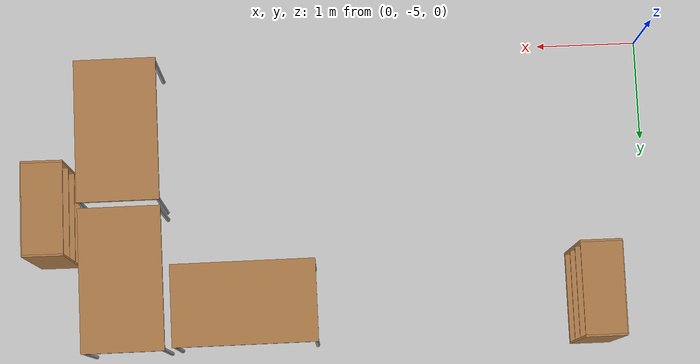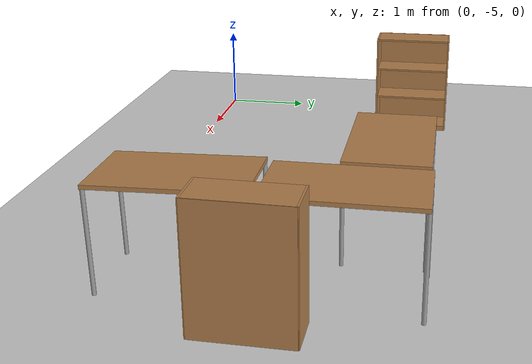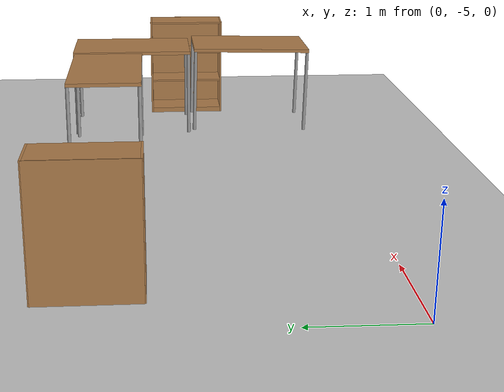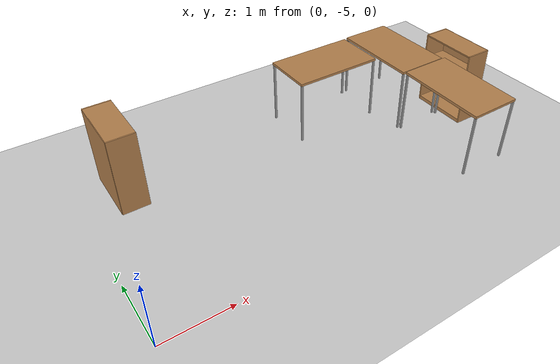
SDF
<sdf version="1.6">
 <world name="default">
  <model name="ground_plane">
   <static>1</static>
   <link name="link">
    <collision name="collision">
     <geometry><plane><normal>0 0 1</normal><size>100 100</size></plane></geometry>
     <surface><friction><ode><mu>100</mu><mu2>50</mu2></ode></friction></surface>
    </collision>
    <visual name="visual">
     <cast_shadows>0</cast_shadows>
     <geometry><plane><normal>0 0 1</normal><size>100 100</size></plane></geometry>
     <material>
      <script><uri>file://media/materials/scripts/gazebo.material</uri><name>Gazebo/Grey</name></script>
     </material>
    </visual>
   </link>
  </model>
  <model name="bookshelf_sidepose_clone_3">
   <link name="link">
    <pose>0.214811 -0.123316 0 0 0 -1.57547</pose>
    <inertial><mass>1</mass></inertial>
    <visual name="visual1">
     <pose>0 0.005 0.6 0 -0 0</pose>
     <geometry><box><size>0.9 0.01 1.2</size></box></geometry>
     <material>
      <script><uri>file://media/materials/scripts/gazebo.material</uri><name>Gazebo/Wood</name></script>
      <ambient>1 1 1 1</ambient>
      <diffuse>1 1 1 1</diffuse>
      <specular>0.2 0.2 0.2 1</specular>
      <emissive>0 0 0 1</emissive>
     </material>
    </visual>
    <visual name="visual2">
     <pose>0.45 -0.195 0.6 0 -0 0</pose>
     <geometry><box><size>0.02 0.4 1.2</size></box></geometry>
     <material>
      <script><uri>file://media/materials/scripts/gazebo.material</uri><name>Gazebo/Wood</name></script>
      <ambient>1 1 1 1</ambient>
      <diffuse>1 1 1 1</diffuse>
      <specular>0.2 0.2 0.2 1</specular>
      <emissive>0 0 0 1</emissive>
     </material>
    </visual>
    <visual name="visual3">
     <pose>-0.45 -0.195 0.6 0 -0 0</pose>
     <geometry><box><size>0.02 0.4 1.2</size></box></geometry>
     <material>
      <script><uri>file://media/materials/scripts/gazebo.material</uri><name>Gazebo/Wood</name></script>
      <ambient>1 1 1 1</ambient>
      <diffuse>1 1 1 1</diffuse>
      <specular>0.2 0.2 0.2 1</specular>
      <emissive>0 0 0 1</emissive>
     </material>
    </visual>
    <visual name="visual4">
     <pose>0 -0.195 0.03 0 -0 0</pose>
     <geometry><box><size>0.88 0.4 0.06</size></box></geometry>
     <material>
      <script><uri>file://media/materials/scripts/gazebo.material</uri><name>Gazebo/Wood</name></script>
      <ambient>1 1 1 1</ambient>
      <diffuse>1 1 1 1</diffuse>
      <specular>0.2 0.2 0.2 1</specular>
      <emissive>0 0 0 1</emissive>
     </material>
    </visual>
    <visual name="visual6">
     <pose>0 -0.195 0.43 0 -0 0</pose>
     <geometry><box><size>0.88 0.4 0.02</size></box></geometry>
     <material>
      <script><uri>file://media/materials/scripts/gazebo.material</uri><name>Gazebo/Wood</name></script>
      <ambient>1 1 1 1</ambient>
      <diffuse>1 1 1 1</diffuse>
      <specular>0.2 0.2 0.2 1</specular>
      <emissive>0 0 0 1</emissive>
     </material>
    </visual>
    <visual name="visual5">
     <pose>0 -0.195 1.19 0 -0 0</pose>
     <geometry><box><size>0.88 0.4 0.02</size></box></geometry>
     <material>
      <script><uri>file://media/materials/scripts/gazebo.material</uri><name>Gazebo/Wood</name></script>
      <ambient>1 1 1 1</ambient>
      <diffuse>1 1 1 1</diffuse>
      <specular>0.2 0.2 0.2 1</specular>
      <emissive>0 0 0 1</emissive>
     </material>
    </visual>
    <visual name="visual7">
     <pose>0 -0.195 0.8 0 -0 0</pose>
     <geometry><box><size>0.88 0.4 0.02</size></box></geometry>
     <material>
      <script><uri>file://media/materials/scripts/gazebo.material</uri><name>Gazebo/Wood</name></script>
      <ambient>1 1 1 1</ambient>
      <diffuse>1 1 1 1</diffuse>
      <specular>0.2 0.2 0.2 1</specular>
      <emissive>0 0 0 1</emissive>
     </material>
    </visual>
    <collision name="back">
     <pose>0 0.005 0.6 0 -0 0</pose>
     <geometry><box><size>0.9 0.01 1.2</size></box></geometry>
     <surface>
      <friction>
       <ode><mu>1</mu><mu2>1</mu2><fdir1>0 0 0</fdir1><slip1>0</slip1><slip2>0</slip2></ode>
       <torsional>
        <coefficient>1</coefficient>
        <patch_radius>0</patch_radius>
        <surface_radius>0</surface_radius>
        <use_patch_radius>1</use_patch_radius>
        <ode><slip>0</slip></ode>
       </torsional>
      </friction>
      <bounce><restitution_coefficient>0</restitution_coefficient><threshold>1e+06</threshold></bounce>
      <contact>
       <collide_without_contact>0</collide_without_contact>
       <collide_without_contact_bitmask>1</collide_without_contact_bitmask>
       <collide_bitmask>1</collide_bitmask>
       <ode>
        <soft_cfm>0</soft_cfm>
        <soft_erp>0.2</soft_erp>
        <kp>1e+13</kp>
        <kd>1</kd>
        <max_vel>0.01</max_vel>
        <min_depth>0</min_depth>
       </ode>
       <bullet>
        <split_impulse>1</split_impulse>
        <split_impulse_penetration_threshold>-0.01</split_impulse_penetration_threshold>
        <soft_cfm>0</soft_cfm>
        <soft_erp>0.2</soft_erp>
        <kp>1e+13</kp>
        <kd>1</kd>
       </bullet>
      </contact>
     </surface>
    </collision>
    <collision name="left_side">
     <pose>0.45 -0.195 0.6 0 -0 0</pose>
     <geometry><box><size>0.02 0.4 1.2</size></box></geometry>
     <surface>
      <friction>
       <ode><mu>1</mu><mu2>1</mu2><fdir1>0 0 0</fdir1><slip1>0</slip1><slip2>0</slip2></ode>
       <torsional>
        <coefficient>1</coefficient>
        <patch_radius>0</patch_radius>
        <surface_radius>0</surface_radius>
        <use_patch_radius>1</use_patch_radius>
        <ode><slip>0</slip></ode>
       </torsional>
      </friction>
      <bounce><restitution_coefficient>0</restitution_coefficient><threshold>1e+06</threshold></bounce>
      <contact>
       <collide_without_contact>0</collide_without_contact>
       <collide_without_contact_bitmask>1</collide_without_contact_bitmask>
       <collide_bitmask>1</collide_bitmask>
       <ode>
        <soft_cfm>0</soft_cfm>
        <soft_erp>0.2</soft_erp>
        <kp>1e+13</kp>
        <kd>1</kd>
        <max_vel>0.01</max_vel>
        <min_depth>0</min_depth>
       </ode>
       <bullet>
        <split_impulse>1</split_impulse>
        <split_impulse_penetration_threshold>-0.01</split_impulse_penetration_threshold>
        <soft_cfm>0</soft_cfm>
        <soft_erp>0.2</soft_erp>
        <kp>1e+13</kp>
        <kd>1</kd>
       </bullet>
      </contact>
     </surface>
    </collision>
    <collision name="right_side">
     <pose>-0.45 -0.195 0.6 0 -0 0</pose>
     <geometry><box><size>0.02 0.4 1.2</size></box></geometry>
     <surface>
      <friction>
       <ode><mu>1</mu><mu2>1</mu2><fdir1>0 0 0</fdir1><slip1>0</slip1><slip2>0</slip2></ode>
       <torsional>
        <coefficient>1</coefficient>
        <patch_radius>0</patch_radius>
        <surface_radius>0</surface_radius>
        <use_patch_radius>1</use_patch_radius>
        <ode><slip>0</slip></ode>
       </torsional>
      </friction>
      <bounce><restitution_coefficient>0</restitution_coefficient><threshold>1e+06</threshold></bounce>
      <contact>
       <collide_without_contact>0</collide_without_contact>
       <collide_without_contact_bitmask>1</collide_without_contact_bitmask>
       <collide_bitmask>1</collide_bitmask>
       <ode>
        <soft_cfm>0</soft_cfm>
        <soft_erp>0.2</soft_erp>
        <kp>1e+13</kp>
        <kd>1</kd>
        <max_vel>0.01</max_vel>
        <min_depth>0</min_depth>
       </ode>
       <bullet>
        <split_impulse>1</split_impulse>
        <split_impulse_penetration_threshold>-0.01</split_impulse_penetration_threshold>
        <soft_cfm>0</soft_cfm>
        <soft_erp>0.2</soft_erp>
        <kp>1e+13</kp>
        <kd>1</kd>
       </bullet>
      </contact>
     </surface>
    </collision>
    <collision name="bottom">
     <pose>0 -0.195 0.03 0 -0 0</pose>
     <geometry><box><size>0.88 0.4 0.06</size></box></geometry>
     <surface>
      <friction>
       <ode><mu>1</mu><mu2>1</mu2><fdir1>0 0 0</fdir1><slip1>0</slip1><slip2>0</slip2></ode>
       <torsional>
        <coefficient>1</coefficient>
        <patch_radius>0</patch_radius>
        <surface_radius>0</surface_radius>
        <use_patch_radius>1</use_patch_radius>
        <ode><slip>0</slip></ode>
       </torsional>
      </friction>
      <bounce><restitution_coefficient>0</restitution_coefficient><threshold>1e+06</threshold></bounce>
      <contact>
       <collide_without_contact>0</collide_without_contact>
       <collide_without_contact_bitmask>1</collide_without_contact_bitmask>
       <collide_bitmask>1</collide_bitmask>
       <ode>
        <soft_cfm>0</soft_cfm>
        <soft_erp>0.2</soft_erp>
        <kp>1e+13</kp>
        <kd>1</kd>
        <max_vel>0.01</max_vel>
        <min_depth>0</min_depth>
       </ode>
       <bullet>
        <split_impulse>1</split_impulse>
        <split_impulse_penetration_threshold>-0.01</split_impulse_penetration_threshold>
        <soft_cfm>0</soft_cfm>
        <soft_erp>0.2</soft_erp>
        <kp>1e+13</kp>
        <kd>1</kd>
       </bullet>
      </contact>
     </surface>
    </collision>
    <collision name="low_shelf">
     <pose>0 -0.195 0.43 0 -0 0</pose>
     <geometry><box><size>0.88 0.4 0.02</size></box></geometry>
     <surface>
      <friction>
       <ode><mu>1</mu><mu2>1</mu2><fdir1>0 0 0</fdir1><slip1>0</slip1><slip2>0</slip2></ode>
       <torsional>
        <coefficient>1</coefficient>
        <patch_radius>0</patch_radius>
        <surface_radius>0</surface_radius>
        <use_patch_radius>1</use_patch_radius>
        <ode><slip>0</slip></ode>
       </torsional>
      </friction>
      <bounce><restitution_coefficient>0</restitution_coefficient><threshold>1e+06</threshold></bounce>
      <contact>
       <collide_without_contact>0</collide_without_contact>
       <collide_without_contact_bitmask>1</collide_without_contact_bitmask>
       <collide_bitmask>1</collide_bitmask>
       <ode>
        <soft_cfm>0</soft_cfm>
        <soft_erp>0.2</soft_erp>
        <kp>1e+13</kp>
        <kd>1</kd>
        <max_vel>0.01</max_vel>
        <min_depth>0</min_depth>
       </ode>
       <bullet>
        <split_impulse>1</split_impulse>
        <split_impulse_penetration_threshold>-0.01</split_impulse_penetration_threshold>
        <soft_cfm>0</soft_cfm>
        <soft_erp>0.2</soft_erp>
        <kp>1e+13</kp>
        <kd>1</kd>
       </bullet>
      </contact>
     </surface>
    </collision>
    <collision name="top">
     <pose>0 -0.195 1.19 0 -0 0</pose>
     <geometry><box><size>0.88 0.4 0.02</size></box></geometry>
     <surface>
      <friction>
       <ode><mu>1</mu><mu2>1</mu2><fdir1>0 0 0</fdir1><slip1>0</slip1><slip2>0</slip2></ode>
       <torsional>
        <coefficient>1</coefficient>
        <patch_radius>0</patch_radius>
        <surface_radius>0</surface_radius>
        <use_patch_radius>1</use_patch_radius>
        <ode><slip>0</slip></ode>
       </torsional>
      </friction>
      <bounce><restitution_coefficient>0</restitution_coefficient><threshold>1e+06</threshold></bounce>
      <contact>
       <collide_without_contact>0</collide_without_contact>
       <collide_without_contact_bitmask>1</collide_without_contact_bitmask>
       <collide_bitmask>1</collide_bitmask>
       <ode>
        <soft_cfm>0</soft_cfm>
        <soft_erp>0.2</soft_erp>
        <kp>1e+13</kp>
        <kd>1</kd>
        <max_vel>0.01</max_vel>
        <min_depth>0</min_depth>
       </ode>
       <bullet>
        <split_impulse>1</split_impulse>
        <split_impulse_penetration_threshold>-0.01</split_impulse_penetration_threshold>
        <soft_cfm>0</soft_cfm>
        <soft_erp>0.2</soft_erp>
        <kp>1e+13</kp>
        <kd>1</kd>
       </bullet>
      </contact>
     </surface>
    </collision>
    <collision name="high_shelf">
     <pose>0 -0.195 0.8 0 -0 0</pose>
     <geometry><box><size>0.88 0.4 0.02</size></box></geometry>
     <surface>
      <friction>
       <ode><mu>1</mu><mu2>1</mu2><fdir1>0 0 0</fdir1><slip1>0</slip1><slip2>0</slip2></ode>
       <torsional>
        <coefficient>1</coefficient>
        <patch_radius>0</patch_radius>
        <surface_radius>0</surface_radius>
        <use_patch_radius>1</use_patch_radius>
        <ode><slip>0</slip></ode>
       </torsional>
      </friction>
      <bounce><restitution_coefficient>0</restitution_coefficient><threshold>1e+06</threshold></bounce>
      <contact>
       <collide_without_contact>0</collide_without_contact>
       <collide_without_contact_bitmask>1</collide_without_contact_bitmask>
       <collide_bitmask>1</collide_bitmask>
       <ode>
        <soft_cfm>0</soft_cfm>
        <soft_erp>0.2</soft_erp>
        <kp>1e+13</kp>
        <kd>1</kd>
        <max_vel>0.01</max_vel>
        <min_depth>0</min_depth>
       </ode>
       <bullet>
        <split_impulse>1</split_impulse>
        <split_impulse_penetration_threshold>-0.01</split_impulse_penetration_threshold>
        <soft_cfm>0</soft_cfm>
        <soft_erp>0.2</soft_erp>
        <kp>1e+13</kp>
        <kd>1</kd>
       </bullet>
      </contact>
     </surface>
    </collision>
   </link>
   <static>1</static>
   <pose>5.91709 -3.24234 0 0 -0 0</pose>
  </model>
  <model name="bookshelf_side2_clone_4">
   <link name="link">
    <pose>0 0 0 0 -0 1.57268</pose>
    <inertial><mass>1</mass></inertial>
    <visual name="visual1">
     <pose>0 0.005 0.6 0 -0 0</pose>
     <geometry><box><size>0.9 0.01 1.2</size></box></geometry>
     <material>
      <script><uri>file://media/materials/scripts/gazebo.material</uri><name>Gazebo/Wood</name></script>
      <ambient>1 1 1 1</ambient>
      <diffuse>1 1 1 1</diffuse>
      <specular>0.2 0.2 0.2 1</specular>
      <emissive>0 0 0 1</emissive>
     </material>
    </visual>
    <visual name="visual2">
     <pose>0.45 -0.195 0.6 0 -0 0</pose>
     <geometry><box><size>0.02 0.4 1.2</size></box></geometry>
     <material>
      <script><uri>file://media/materials/scripts/gazebo.material</uri><name>Gazebo/Wood</name></script>
      <ambient>1 1 1 1</ambient>
      <diffuse>1 1 1 1</diffuse>
      <specular>0.2 0.2 0.2 1</specular>
      <emissive>0 0 0 1</emissive>
     </material>
    </visual>
    <visual name="visual4">
     <pose>0 -0.195 0.03 0 -0 0</pose>
     <geometry><box><size>0.88 0.4 0.06</size></box></geometry>
     <material>
      <script><uri>file://media/materials/scripts/gazebo.material</uri><name>Gazebo/Wood</name></script>
      <ambient>1 1 1 1</ambient>
      <diffuse>1 1 1 1</diffuse>
      <specular>0.2 0.2 0.2 1</specular>
      <emissive>0 0 0 1</emissive>
     </material>
    </visual>
    <visual name="visual3">
     <pose>-0.45 -0.195 0.6 0 -0 0</pose>
     <geometry><box><size>0.02 0.4 1.2</size></box></geometry>
     <material>
      <script><uri>file://media/materials/scripts/gazebo.material</uri><name>Gazebo/Wood</name></script>
      <ambient>1 1 1 1</ambient>
      <diffuse>1 1 1 1</diffuse>
      <specular>0.2 0.2 0.2 1</specular>
      <emissive>0 0 0 1</emissive>
     </material>
    </visual>
    <visual name="visual5">
     <pose>0 -0.195 1.19 0 -0 0</pose>
     <geometry><box><size>0.88 0.4 0.02</size></box></geometry>
     <material>
      <script><uri>file://media/materials/scripts/gazebo.material</uri><name>Gazebo/Wood</name></script>
      <ambient>1 1 1 1</ambient>
      <diffuse>1 1 1 1</diffuse>
      <specular>0.2 0.2 0.2 1</specular>
      <emissive>0 0 0 1</emissive>
     </material>
    </visual>
    <visual name="visual6">
     <pose>0 -0.195 0.43 0 -0 0</pose>
     <geometry><box><size>0.88 0.4 0.02</size></box></geometry>
     <material>
      <script><uri>file://media/materials/scripts/gazebo.material</uri><name>Gazebo/Wood</name></script>
      <ambient>1 1 1 1</ambient>
      <diffuse>1 1 1 1</diffuse>
      <specular>0.2 0.2 0.2 1</specular>
      <emissive>0 0 0 1</emissive>
     </material>
    </visual>
    <visual name="visual7">
     <pose>0 -0.195 0.8 0 -0 0</pose>
     <geometry><box><size>0.88 0.4 0.02</size></box></geometry>
     <material>
      <script><uri>file://media/materials/scripts/gazebo.material</uri><name>Gazebo/Wood</name></script>
      <ambient>1 1 1 1</ambient>
      <diffuse>1 1 1 1</diffuse>
      <specular>0.2 0.2 0.2 1</specular>
      <emissive>0 0 0 1</emissive>
     </material>
    </visual>
    <collision name="right_side">
     <pose>-0.45 -0.195 0.6 0 -0 0</pose>
     <geometry><box><size>0.02 0.4 1.2</size></box></geometry>
     <surface>
      <friction>
       <ode><mu>1</mu><mu2>1</mu2><fdir1>0 0 0</fdir1><slip1>0</slip1><slip2>0</slip2></ode>
       <torsional>
        <coefficient>1</coefficient>
        <patch_radius>0</patch_radius>
        <surface_radius>0</surface_radius>
        <use_patch_radius>1</use_patch_radius>
        <ode><slip>0</slip></ode>
       </torsional>
      </friction>
      <bounce><restitution_coefficient>0</restitution_coefficient><threshold>1e+06</threshold></bounce>
      <contact>
       <collide_without_contact>0</collide_without_contact>
       <collide_without_contact_bitmask>1</collide_without_contact_bitmask>
       <collide_bitmask>1</collide_bitmask>
       <ode>
        <soft_cfm>0</soft_cfm>
        <soft_erp>0.2</soft_erp>
        <kp>1e+13</kp>
        <kd>1</kd>
        <max_vel>0.01</max_vel>
        <min_depth>0</min_depth>
       </ode>
       <bullet>
        <split_impulse>1</split_impulse>
        <split_impulse_penetration_threshold>-0.01</split_impulse_penetration_threshold>
        <soft_cfm>0</soft_cfm>
        <soft_erp>0.2</soft_erp>
        <kp>1e+13</kp>
        <kd>1</kd>
       </bullet>
      </contact>
     </surface>
    </collision>
    <collision name="bottom">
     <pose>0 -0.195 0.03 0 -0 0</pose>
     <geometry><box><size>0.88 0.4 0.06</size></box></geometry>
     <surface>
      <friction>
       <ode><mu>1</mu><mu2>1</mu2><fdir1>0 0 0</fdir1><slip1>0</slip1><slip2>0</slip2></ode>
       <torsional>
        <coefficient>1</coefficient>
        <patch_radius>0</patch_radius>
        <surface_radius>0</surface_radius>
        <use_patch_radius>1</use_patch_radius>
        <ode><slip>0</slip></ode>
       </torsional>
      </friction>
      <bounce><restitution_coefficient>0</restitution_coefficient><threshold>1e+06</threshold></bounce>
      <contact>
       <collide_without_contact>0</collide_without_contact>
       <collide_without_contact_bitmask>1</collide_without_contact_bitmask>
       <collide_bitmask>1</collide_bitmask>
       <ode>
        <soft_cfm>0</soft_cfm>
        <soft_erp>0.2</soft_erp>
        <kp>1e+13</kp>
        <kd>1</kd>
        <max_vel>0.01</max_vel>
        <min_depth>0</min_depth>
       </ode>
       <bullet>
        <split_impulse>1</split_impulse>
        <split_impulse_penetration_threshold>-0.01</split_impulse_penetration_threshold>
        <soft_cfm>0</soft_cfm>
        <soft_erp>0.2</soft_erp>
        <kp>1e+13</kp>
        <kd>1</kd>
       </bullet>
      </contact>
     </surface>
    </collision>
    <collision name="back">
     <pose>0 0.005 0.6 0 -0 0</pose>
     <geometry><box><size>0.9 0.01 1.2</size></box></geometry>
     <surface>
      <friction>
       <ode><mu>1</mu><mu2>1</mu2><fdir1>0 0 0</fdir1><slip1>0</slip1><slip2>0</slip2></ode>
       <torsional>
        <coefficient>1</coefficient>
        <patch_radius>0</patch_radius>
        <surface_radius>0</surface_radius>
        <use_patch_radius>1</use_patch_radius>
        <ode><slip>0</slip></ode>
       </torsional>
      </friction>
      <bounce><restitution_coefficient>0</restitution_coefficient><threshold>1e+06</threshold></bounce>
      <contact>
       <collide_without_contact>0</collide_without_contact>
       <collide_without_contact_bitmask>1</collide_without_contact_bitmask>
       <collide_bitmask>1</collide_bitmask>
       <ode>
        <soft_cfm>0</soft_cfm>
        <soft_erp>0.2</soft_erp>
        <kp>1e+13</kp>
        <kd>1</kd>
        <max_vel>0.01</max_vel>
        <min_depth>0</min_depth>
       </ode>
       <bullet>
        <split_impulse>1</split_impulse>
        <split_impulse_penetration_threshold>-0.01</split_impulse_penetration_threshold>
        <soft_cfm>0</soft_cfm>
        <soft_erp>0.2</soft_erp>
        <kp>1e+13</kp>
        <kd>1</kd>
       </bullet>
      </contact>
     </surface>
    </collision>
    <collision name="left_side">
     <pose>0.45 -0.195 0.6 0 -0 0</pose>
     <geometry><box><size>0.02 0.4 1.2</size></box></geometry>
     <surface>
      <friction>
       <ode><mu>1</mu><mu2>1</mu2><fdir1>0 0 0</fdir1><slip1>0</slip1><slip2>0</slip2></ode>
       <torsional>
        <coefficient>1</coefficient>
        <patch_radius>0</patch_radius>
        <surface_radius>0</surface_radius>
        <use_patch_radius>1</use_patch_radius>
        <ode><slip>0</slip></ode>
       </torsional>
      </friction>
      <bounce><restitution_coefficient>0</restitution_coefficient><threshold>1e+06</threshold></bounce>
      <contact>
       <collide_without_contact>0</collide_without_contact>
       <collide_without_contact_bitmask>1</collide_without_contact_bitmask>
       <collide_bitmask>1</collide_bitmask>
       <ode>
        <soft_cfm>0</soft_cfm>
        <soft_erp>0.2</soft_erp>
        <kp>1e+13</kp>
        <kd>1</kd>
        <max_vel>0.01</max_vel>
        <min_depth>0</min_depth>
       </ode>
       <bullet>
        <split_impulse>1</split_impulse>
        <split_impulse_penetration_threshold>-0.01</split_impulse_penetration_threshold>
        <soft_cfm>0</soft_cfm>
        <soft_erp>0.2</soft_erp>
        <kp>1e+13</kp>
        <kd>1</kd>
       </bullet>
      </contact>
     </surface>
    </collision>
    <collision name="top">
     <pose>0 -0.195 1.19 0 -0 0</pose>
     <geometry><box><size>0.88 0.4 0.02</size></box></geometry>
     <surface>
      <friction>
       <ode><mu>1</mu><mu2>1</mu2><fdir1>0 0 0</fdir1><slip1>0</slip1><slip2>0</slip2></ode>
       <torsional>
        <coefficient>1</coefficient>
        <patch_radius>0</patch_radius>
        <surface_radius>0</surface_radius>
        <use_patch_radius>1</use_patch_radius>
        <ode><slip>0</slip></ode>
       </torsional>
      </friction>
      <bounce><restitution_coefficient>0</restitution_coefficient><threshold>1e+06</threshold></bounce>
      <contact>
       <collide_without_contact>0</collide_without_contact>
       <collide_without_contact_bitmask>1</collide_without_contact_bitmask>
       <collide_bitmask>1</collide_bitmask>
       <ode>
        <soft_cfm>0</soft_cfm>
        <soft_erp>0.2</soft_erp>
        <kp>1e+13</kp>
        <kd>1</kd>
        <max_vel>0.01</max_vel>
        <min_depth>0</min_depth>
       </ode>
       <bullet>
        <split_impulse>1</split_impulse>
        <split_impulse_penetration_threshold>-0.01</split_impulse_penetration_threshold>
        <soft_cfm>0</soft_cfm>
        <soft_erp>0.2</soft_erp>
        <kp>1e+13</kp>
        <kd>1</kd>
       </bullet>
      </contact>
     </surface>
    </collision>
    <collision name="low_shelf">
     <pose>0 -0.195 0.43 0 -0 0</pose>
     <geometry><box><size>0.88 0.4 0.02</size></box></geometry>
     <surface>
      <friction>
       <ode><mu>1</mu><mu2>1</mu2><fdir1>0 0 0</fdir1><slip1>0</slip1><slip2>0</slip2></ode>
       <torsional>
        <coefficient>1</coefficient>
        <patch_radius>0</patch_radius>
        <surface_radius>0</surface_radius>
        <use_patch_radius>1</use_patch_radius>
        <ode><slip>0</slip></ode>
       </torsional>
      </friction>
      <bounce><restitution_coefficient>0</restitution_coefficient><threshold>1e+06</threshold></bounce>
      <contact>
       <collide_without_contact>0</collide_without_contact>
       <collide_without_contact_bitmask>1</collide_without_contact_bitmask>
       <collide_bitmask>1</collide_bitmask>
       <ode>
        <soft_cfm>0</soft_cfm>
        <soft_erp>0.2</soft_erp>
        <kp>1e+13</kp>
        <kd>1</kd>
        <max_vel>0.01</max_vel>
        <min_depth>0</min_depth>
       </ode>
       <bullet>
        <split_impulse>1</split_impulse>
        <split_impulse_penetration_threshold>-0.01</split_impulse_penetration_threshold>
        <soft_cfm>0</soft_cfm>
        <soft_erp>0.2</soft_erp>
        <kp>1e+13</kp>
        <kd>1</kd>
       </bullet>
      </contact>
     </surface>
    </collision>
    <collision name="high_shelf">
     <pose>0 -0.195 0.8 0 -0 0</pose>
     <geometry><box><size>0.88 0.4 0.02</size></box></geometry>
     <surface>
      <friction>
       <ode><mu>1</mu><mu2>1</mu2><fdir1>0 0 0</fdir1><slip1>0</slip1><slip2>0</slip2></ode>
       <torsional>
        <coefficient>1</coefficient>
        <patch_radius>0</patch_radius>
        <surface_radius>0</surface_radius>
        <use_patch_radius>1</use_patch_radius>
        <ode><slip>0</slip></ode>
       </torsional>
      </friction>
      <bounce><restitution_coefficient>0</restitution_coefficient><threshold>1e+06</threshold></bounce>
      <contact>
       <collide_without_contact>0</collide_without_contact>
       <collide_without_contact_bitmask>1</collide_without_contact_bitmask>
       <collide_bitmask>1</collide_bitmask>
       <ode>
        <soft_cfm>0</soft_cfm>
        <soft_erp>0.2</soft_erp>
        <kp>1e+13</kp>
        <kd>1</kd>
        <max_vel>0.01</max_vel>
        <min_depth>0</min_depth>
       </ode>
       <bullet>
        <split_impulse>1</split_impulse>
        <split_impulse_penetration_threshold>-0.01</split_impulse_penetration_threshold>
        <soft_cfm>0</soft_cfm>
        <soft_erp>0.2</soft_erp>
        <kp>1e+13</kp>
        <kd>1</kd>
       </bullet>
      </contact>
     </surface>
    </collision>
   </link>
   <static>1</static>
   <pose>0.44647 -2.39513 0 0 -0 0</pose>
  </model>
  <model name="table_vert_0_clone">
   <link name="link">
    <pose>0 0 0 0 0 -1.56614</pose>
    <inertial>
     <inertia><ixx>1</ixx><ixy>0</ixy><ixz>0</ixz><iyy>1</iyy><iyz>0</iyz><izz>1</izz></inertia>
     <mass>1</mass>
    </inertial>
    <visual name="visual1">
     <pose>0 0 1 0 -0 0</pose>
     <geometry><box><size>1.4 0.8 0.04</size></box></geometry>
     <material>
      <script><uri>file://media/materials/scripts/gazebo.material</uri><name>Gazebo/Wood</name></script>
      <ambient>1 1 1 1</ambient>
      <diffuse>1 1 1 1</diffuse>
      <specular>0.2 0.2 0.2 1</specular>
      <emissive>0 0 0 1</emissive>
     </material>
    </visual>
    <visual name="front_left_leg">
     <pose>0.68 0.38 0.5 0 -0 0</pose>
     <geometry><cylinder><radius>0.02</radius><length>1</length></cylinder></geometry>
     <material>
      <script><uri>file://media/materials/scripts/gazebo.material</uri><name>Gazebo/Grey</name></script>
      <ambient>0.3 0.3 0.3 1</ambient>
      <diffuse>0.7 0.7 0.7 1</diffuse>
      <specular>0.01 0.01 0.01 1</specular>
      <emissive>0 0 0 1</emissive>
     </material>
    </visual>
    <visual name="front_right_leg">
     <pose>0.68 -0.38 0.5 0 -0 0</pose>
     <geometry><cylinder><radius>0.02</radius><length>1</length></cylinder></geometry>
     <material>
      <script><uri>file://media/materials/scripts/gazebo.material</uri><name>Gazebo/Grey</name></script>
      <ambient>0.3 0.3 0.3 1</ambient>
      <diffuse>0.7 0.7 0.7 1</diffuse>
      <specular>0.01 0.01 0.01 1</specular>
      <emissive>0 0 0 1</emissive>
     </material>
    </visual>
    <visual name="back_right_leg">
     <pose>-0.68 -0.38 0.5 0 -0 0</pose>
     <geometry><cylinder><radius>0.02</radius><length>1</length></cylinder></geometry>
     <material>
      <script><uri>file://media/materials/scripts/gazebo.material</uri><name>Gazebo/Grey</name></script>
      <ambient>0.3 0.3 0.3 1</ambient>
      <diffuse>0.7 0.7 0.7 1</diffuse>
      <specular>0.01 0.01 0.01 1</specular>
      <emissive>0 0 0 1</emissive>
     </material>
    </visual>
    <visual name="back_left_leg">
     <pose>-0.68 0.38 0.5 0 -0 0</pose>
     <geometry><cylinder><radius>0.02</radius><length>1</length></cylinder></geometry>
     <material>
      <script><uri>file://media/materials/scripts/gazebo.material</uri><name>Gazebo/Grey</name></script>
      <ambient>0.3 0.3 0.3 1</ambient>
      <diffuse>0.7 0.7 0.7 1</diffuse>
      <specular>0.01 0.01 0.01 1</specular>
      <emissive>0 0 0 1</emissive>
     </material>
    </visual>
    <collision name="surface">
     <pose>0 0 1 0 -0 0</pose>
     <geometry><box><size>1.5 0.8 0.03</size></box></geometry>
     <surface>
      <friction>
       <ode><mu>0.6</mu><mu2>0.6</mu2><fdir1>0 0 0</fdir1><slip1>0</slip1><slip2>0</slip2></ode>
       <torsional>
        <coefficient>1</coefficient>
        <patch_radius>0</patch_radius>
        <surface_radius>0</surface_radius>
        <use_patch_radius>1</use_patch_radius>
        <ode><slip>0</slip></ode>
       </torsional>
      </friction>
      <bounce><restitution_coefficient>0</restitution_coefficient><threshold>1e+06</threshold></bounce>
      <contact>
       <collide_without_contact>0</collide_without_contact>
       <collide_without_contact_bitmask>1</collide_without_contact_bitmask>
       <collide_bitmask>1</collide_bitmask>
       <ode>
        <soft_cfm>0</soft_cfm>
        <soft_erp>0.2</soft_erp>
        <kp>1e+13</kp>
        <kd>1</kd>
        <max_vel>0.01</max_vel>
        <min_depth>0</min_depth>
       </ode>
       <bullet>
        <split_impulse>1</split_impulse>
        <split_impulse_penetration_threshold>-0.01</split_impulse_penetration_threshold>
        <soft_cfm>0</soft_cfm>
        <soft_erp>0.2</soft_erp>
        <kp>1e+13</kp>
        <kd>1</kd>
       </bullet>
      </contact>
     </surface>
    </collision>
    <collision name="front_left_leg">
     <pose>0.68 0.38 0.5 0 -0 0</pose>
     <geometry><cylinder><radius>0.02</radius><length>1</length></cylinder></geometry>
     <surface>
      <friction>
       <ode><mu>1</mu><mu2>1</mu2><fdir1>0 0 0</fdir1><slip1>0</slip1><slip2>0</slip2></ode>
       <torsional>
        <coefficient>1</coefficient>
        <patch_radius>0</patch_radius>
        <surface_radius>0</surface_radius>
        <use_patch_radius>1</use_patch_radius>
        <ode><slip>0</slip></ode>
       </torsional>
      </friction>
      <bounce><restitution_coefficient>0</restitution_coefficient><threshold>1e+06</threshold></bounce>
      <contact>
       <collide_without_contact>0</collide_without_contact>
       <collide_without_contact_bitmask>1</collide_without_contact_bitmask>
       <collide_bitmask>1</collide_bitmask>
       <ode>
        <soft_cfm>0</soft_cfm>
        <soft_erp>0.2</soft_erp>
        <kp>1e+13</kp>
        <kd>1</kd>
        <max_vel>0.01</max_vel>
        <min_depth>0</min_depth>
       </ode>
       <bullet>
        <split_impulse>1</split_impulse>
        <split_impulse_penetration_threshold>-0.01</split_impulse_penetration_threshold>
        <soft_cfm>0</soft_cfm>
        <soft_erp>0.2</soft_erp>
        <kp>1e+13</kp>
        <kd>1</kd>
       </bullet>
      </contact>
     </surface>
    </collision>
    <collision name="front_right_leg">
     <pose>0.68 -0.38 0.5 0 -0 0</pose>
     <geometry><cylinder><radius>0.02</radius><length>1</length></cylinder></geometry>
     <surface>
      <friction>
       <ode><mu>1</mu><mu2>1</mu2><fdir1>0 0 0</fdir1><slip1>0</slip1><slip2>0</slip2></ode>
       <torsional>
        <coefficient>1</coefficient>
        <patch_radius>0</patch_radius>
        <surface_radius>0</surface_radius>
        <use_patch_radius>1</use_patch_radius>
        <ode><slip>0</slip></ode>
       </torsional>
      </friction>
      <bounce><restitution_coefficient>0</restitution_coefficient><threshold>1e+06</threshold></bounce>
      <contact>
       <collide_without_contact>0</collide_without_contact>
       <collide_without_contact_bitmask>1</collide_without_contact_bitmask>
       <collide_bitmask>1</collide_bitmask>
       <ode>
        <soft_cfm>0</soft_cfm>
        <soft_erp>0.2</soft_erp>
        <kp>1e+13</kp>
        <kd>1</kd>
        <max_vel>0.01</max_vel>
        <min_depth>0</min_depth>
       </ode>
       <bullet>
        <split_impulse>1</split_impulse>
        <split_impulse_penetration_threshold>-0.01</split_impulse_penetration_threshold>
        <soft_cfm>0</soft_cfm>
        <soft_erp>0.2</soft_erp>
        <kp>1e+13</kp>
        <kd>1</kd>
       </bullet>
      </contact>
     </surface>
    </collision>
    <collision name="back_right_leg">
     <pose>-0.68 -0.38 0.5 0 -0 0</pose>
     <geometry><cylinder><radius>0.02</radius><length>1</length></cylinder></geometry>
     <surface>
      <friction>
       <ode><mu>1</mu><mu2>1</mu2><fdir1>0 0 0</fdir1><slip1>0</slip1><slip2>0</slip2></ode>
       <torsional>
        <coefficient>1</coefficient>
        <patch_radius>0</patch_radius>
        <surface_radius>0</surface_radius>
        <use_patch_radius>1</use_patch_radius>
        <ode><slip>0</slip></ode>
       </torsional>
      </friction>
      <bounce><restitution_coefficient>0</restitution_coefficient><threshold>1e+06</threshold></bounce>
      <contact>
       <collide_without_contact>0</collide_without_contact>
       <collide_without_contact_bitmask>1</collide_without_contact_bitmask>
       <collide_bitmask>1</collide_bitmask>
       <ode>
        <soft_cfm>0</soft_cfm>
        <soft_erp>0.2</soft_erp>
        <kp>1e+13</kp>
        <kd>1</kd>
        <max_vel>0.01</max_vel>
        <min_depth>0</min_depth>
       </ode>
       <bullet>
        <split_impulse>1</split_impulse>
        <split_impulse_penetration_threshold>-0.01</split_impulse_penetration_threshold>
        <soft_cfm>0</soft_cfm>
        <soft_erp>0.2</soft_erp>
        <kp>1e+13</kp>
        <kd>1</kd>
       </bullet>
      </contact>
     </surface>
    </collision>
    <collision name="back_left_leg">
     <pose>-0.68 0.38 0.5 0 -0 0</pose>
     <geometry><cylinder><radius>0.02</radius><length>1</length></cylinder></geometry>
     <surface>
      <friction>
       <ode><mu>1</mu><mu2>1</mu2><fdir1>0 0 0</fdir1><slip1>0</slip1><slip2>0</slip2></ode>
       <torsional>
        <coefficient>1</coefficient>
        <patch_radius>0</patch_radius>
        <surface_radius>0</surface_radius>
        <use_patch_radius>1</use_patch_radius>
        <ode><slip>0</slip></ode>
       </torsional>
      </friction>
      <bounce><restitution_coefficient>0</restitution_coefficient><threshold>1e+06</threshold></bounce>
      <contact>
       <collide_without_contact>0</collide_without_contact>
       <collide_without_contact_bitmask>1</collide_without_contact_bitmask>
       <collide_bitmask>1</collide_bitmask>
       <ode>
        <soft_cfm>0</soft_cfm>
        <soft_erp>0.2</soft_erp>
        <kp>1e+13</kp>
        <kd>1</kd>
        <max_vel>0.01</max_vel>
        <min_depth>0</min_depth>
       </ode>
       <bullet>
        <split_impulse>1</split_impulse>
        <split_impulse_penetration_threshold>-0.01</split_impulse_penetration_threshold>
        <soft_cfm>0</soft_cfm>
        <soft_erp>0.2</soft_erp>
        <kp>1e+13</kp>
        <kd>1</kd>
       </bullet>
      </contact>
     </surface>
    </collision>
   </link>
   <static>0</static>
   <pose>5.22557 -2.67583 -1e-06 2e-06 -0 9e-05</pose>
  </model>
  <model name="table_vert_0_clone_clone">
   <link name="link">
    <pose>0 0 0 0 0 -1.56614</pose>
    <inertial>
     <inertia><ixx>1</ixx><ixy>0</ixy><ixz>0</ixz><iyy>1</iyy><iyz>0</iyz><izz>1</izz></inertia>
     <mass>1</mass>
    </inertial>
    <visual name="visual1">
     <pose>0 0 1 0 -0 0</pose>
     <geometry><box><size>1.4 0.8 0.04</size></box></geometry>
     <material>
      <script><uri>file://media/materials/scripts/gazebo.material</uri><name>Gazebo/Wood</name></script>
      <ambient>1 1 1 1</ambient>
      <diffuse>1 1 1 1</diffuse>
      <specular>0.2 0.2 0.2 1</specular>
      <emissive>0 0 0 1</emissive>
     </material>
    </visual>
    <visual name="front_left_leg">
     <pose>0.68 0.38 0.5 0 -0 0</pose>
     <geometry><cylinder><radius>0.02</radius><length>1</length></cylinder></geometry>
     <material>
      <script><uri>file://media/materials/scripts/gazebo.material</uri><name>Gazebo/Grey</name></script>
      <ambient>0.3 0.3 0.3 1</ambient>
      <diffuse>0.7 0.7 0.7 1</diffuse>
      <specular>0.01 0.01 0.01 1</specular>
      <emissive>0 0 0 1</emissive>
     </material>
    </visual>
    <visual name="front_right_leg">
     <pose>0.68 -0.38 0.5 0 -0 0</pose>
     <geometry><cylinder><radius>0.02</radius><length>1</length></cylinder></geometry>
     <material>
      <script><uri>file://media/materials/scripts/gazebo.material</uri><name>Gazebo/Grey</name></script>
      <ambient>0.3 0.3 0.3 1</ambient>
      <diffuse>0.7 0.7 0.7 1</diffuse>
      <specular>0.01 0.01 0.01 1</specular>
      <emissive>0 0 0 1</emissive>
     </material>
    </visual>
    <visual name="back_right_leg">
     <pose>-0.68 -0.38 0.5 0 -0 0</pose>
     <geometry><cylinder><radius>0.02</radius><length>1</length></cylinder></geometry>
     <material>
      <script><uri>file://media/materials/scripts/gazebo.material</uri><name>Gazebo/Grey</name></script>
      <ambient>0.3 0.3 0.3 1</ambient>
      <diffuse>0.7 0.7 0.7 1</diffuse>
      <specular>0.01 0.01 0.01 1</specular>
      <emissive>0 0 0 1</emissive>
     </material>
    </visual>
    <visual name="back_left_leg">
     <pose>-0.68 0.38 0.5 0 -0 0</pose>
     <geometry><cylinder><radius>0.02</radius><length>1</length></cylinder></geometry>
     <material>
      <script><uri>file://media/materials/scripts/gazebo.material</uri><name>Gazebo/Grey</name></script>
      <ambient>0.3 0.3 0.3 1</ambient>
      <diffuse>0.7 0.7 0.7 1</diffuse>
      <specular>0.01 0.01 0.01 1</specular>
      <emissive>0 0 0 1</emissive>
     </material>
    </visual>
    <collision name="surface">
     <pose>0 0 1 0 -0 0</pose>
     <geometry><box><size>1.5 0.8 0.03</size></box></geometry>
     <surface>
      <friction>
       <ode><mu>0.6</mu><mu2>0.6</mu2><fdir1>0 0 0</fdir1><slip1>0</slip1><slip2>0</slip2></ode>
       <torsional>
        <coefficient>1</coefficient>
        <patch_radius>0</patch_radius>
        <surface_radius>0</surface_radius>
        <use_patch_radius>1</use_patch_radius>
        <ode><slip>0</slip></ode>
       </torsional>
      </friction>
      <bounce><restitution_coefficient>0</restitution_coefficient><threshold>1e+06</threshold></bounce>
      <contact>
       <collide_without_contact>0</collide_without_contact>
       <collide_without_contact_bitmask>1</collide_without_contact_bitmask>
       <collide_bitmask>1</collide_bitmask>
       <ode>
        <soft_cfm>0</soft_cfm>
        <soft_erp>0.2</soft_erp>
        <kp>1e+13</kp>
        <kd>1</kd>
        <max_vel>0.01</max_vel>
        <min_depth>0</min_depth>
       </ode>
       <bullet>
        <split_impulse>1</split_impulse>
        <split_impulse_penetration_threshold>-0.01</split_impulse_penetration_threshold>
        <soft_cfm>0</soft_cfm>
        <soft_erp>0.2</soft_erp>
        <kp>1e+13</kp>
        <kd>1</kd>
       </bullet>
      </contact>
     </surface>
    </collision>
    <collision name="front_left_leg">
     <pose>0.68 0.38 0.5 0 -0 0</pose>
     <geometry><cylinder><radius>0.02</radius><length>1</length></cylinder></geometry>
     <surface>
      <friction>
       <ode><mu>1</mu><mu2>1</mu2><fdir1>0 0 0</fdir1><slip1>0</slip1><slip2>0</slip2></ode>
       <torsional>
        <coefficient>1</coefficient>
        <patch_radius>0</patch_radius>
        <surface_radius>0</surface_radius>
        <use_patch_radius>1</use_patch_radius>
        <ode><slip>0</slip></ode>
       </torsional>
      </friction>
      <bounce><restitution_coefficient>0</restitution_coefficient><threshold>1e+06</threshold></bounce>
      <contact>
       <collide_without_contact>0</collide_without_contact>
       <collide_without_contact_bitmask>1</collide_without_contact_bitmask>
       <collide_bitmask>1</collide_bitmask>
       <ode>
        <soft_cfm>0</soft_cfm>
        <soft_erp>0.2</soft_erp>
        <kp>1e+13</kp>
        <kd>1</kd>
        <max_vel>0.01</max_vel>
        <min_depth>0</min_depth>
       </ode>
       <bullet>
        <split_impulse>1</split_impulse>
        <split_impulse_penetration_threshold>-0.01</split_impulse_penetration_threshold>
        <soft_cfm>0</soft_cfm>
        <soft_erp>0.2</soft_erp>
        <kp>1e+13</kp>
        <kd>1</kd>
       </bullet>
      </contact>
     </surface>
    </collision>
    <collision name="front_right_leg">
     <pose>0.68 -0.38 0.5 0 -0 0</pose>
     <geometry><cylinder><radius>0.02</radius><length>1</length></cylinder></geometry>
     <surface>
      <friction>
       <ode><mu>1</mu><mu2>1</mu2><fdir1>0 0 0</fdir1><slip1>0</slip1><slip2>0</slip2></ode>
       <torsional>
        <coefficient>1</coefficient>
        <patch_radius>0</patch_radius>
        <surface_radius>0</surface_radius>
        <use_patch_radius>1</use_patch_radius>
        <ode><slip>0</slip></ode>
       </torsional>
      </friction>
      <bounce><restitution_coefficient>0</restitution_coefficient><threshold>1e+06</threshold></bounce>
      <contact>
       <collide_without_contact>0</collide_without_contact>
       <collide_without_contact_bitmask>1</collide_without_contact_bitmask>
       <collide_bitmask>1</collide_bitmask>
       <ode>
        <soft_cfm>0</soft_cfm>
        <soft_erp>0.2</soft_erp>
        <kp>1e+13</kp>
        <kd>1</kd>
        <max_vel>0.01</max_vel>
        <min_depth>0</min_depth>
       </ode>
       <bullet>
        <split_impulse>1</split_impulse>
        <split_impulse_penetration_threshold>-0.01</split_impulse_penetration_threshold>
        <soft_cfm>0</soft_cfm>
        <soft_erp>0.2</soft_erp>
        <kp>1e+13</kp>
        <kd>1</kd>
       </bullet>
      </contact>
     </surface>
    </collision>
    <collision name="back_right_leg">
     <pose>-0.68 -0.38 0.5 0 -0 0</pose>
     <geometry><cylinder><radius>0.02</radius><length>1</length></cylinder></geometry>
     <surface>
      <friction>
       <ode><mu>1</mu><mu2>1</mu2><fdir1>0 0 0</fdir1><slip1>0</slip1><slip2>0</slip2></ode>
       <torsional>
        <coefficient>1</coefficient>
        <patch_radius>0</patch_radius>
        <surface_radius>0</surface_radius>
        <use_patch_radius>1</use_patch_radius>
        <ode><slip>0</slip></ode>
       </torsional>
      </friction>
      <bounce><restitution_coefficient>0</restitution_coefficient><threshold>1e+06</threshold></bounce>
      <contact>
       <collide_without_contact>0</collide_without_contact>
       <collide_without_contact_bitmask>1</collide_without_contact_bitmask>
       <collide_bitmask>1</collide_bitmask>
       <ode>
        <soft_cfm>0</soft_cfm>
        <soft_erp>0.2</soft_erp>
        <kp>1e+13</kp>
        <kd>1</kd>
        <max_vel>0.01</max_vel>
        <min_depth>0</min_depth>
       </ode>
       <bullet>
        <split_impulse>1</split_impulse>
        <split_impulse_penetration_threshold>-0.01</split_impulse_penetration_threshold>
        <soft_cfm>0</soft_cfm>
        <soft_erp>0.2</soft_erp>
        <kp>1e+13</kp>
        <kd>1</kd>
       </bullet>
      </contact>
     </surface>
    </collision>
    <collision name="back_left_leg">
     <pose>-0.68 0.38 0.5 0 -0 0</pose>
     <geometry><cylinder><radius>0.02</radius><length>1</length></cylinder></geometry>
     <surface>
      <friction>
       <ode><mu>1</mu><mu2>1</mu2><fdir1>0 0 0</fdir1><slip1>0</slip1><slip2>0</slip2></ode>
       <torsional>
        <coefficient>1</coefficient>
        <patch_radius>0</patch_radius>
        <surface_radius>0</surface_radius>
        <use_patch_radius>1</use_patch_radius>
        <ode><slip>0</slip></ode>
       </torsional>
      </friction>
      <bounce><restitution_coefficient>0</restitution_coefficient><threshold>1e+06</threshold></bounce>
      <contact>
       <collide_without_contact>0</collide_without_contact>
       <collide_without_contact_bitmask>1</collide_without_contact_bitmask>
       <collide_bitmask>1</collide_bitmask>
       <ode>
        <soft_cfm>0</soft_cfm>
        <soft_erp>0.2</soft_erp>
        <kp>1e+13</kp>
        <kd>1</kd>
        <max_vel>0.01</max_vel>
        <min_depth>0</min_depth>
       </ode>
       <bullet>
        <split_impulse>1</split_impulse>
        <split_impulse_penetration_threshold>-0.01</split_impulse_penetration_threshold>
        <soft_cfm>0</soft_cfm>
        <soft_erp>0.2</soft_erp>
        <kp>1e+13</kp>
        <kd>1</kd>
       </bullet>
      </contact>
     </surface>
    </collision>
   </link>
   <static>0</static>
   <pose>5.23548 -4.10503 0.015109 0.021584 0.000113 9.3e-05</pose>
  </model>
  <model name="table_0_clone_clone_1_clone_clone_clone">
   <static>0</static>
   <link name="link">
    <collision name="surface">
     <pose>0 0 1 0 -0 0</pose>
     <geometry><box><size>1.5 0.8 0.03</size></box></geometry>
     <surface><friction><ode><mu>0.6</mu><mu2>0.6</mu2></ode></friction></surface>
    </collision>
    <visual name="visual1">
     <pose>0 0 1 0 -0 0</pose>
     <geometry><box><size>1.4 0.8 0.04</size></box></geometry>
     <material>
      <script><uri>file://media/materials/scripts/gazebo.material</uri><name>Gazebo/Wood</name></script>
     </material>
    </visual>
    <collision name="front_left_leg">
     <pose>0.68 0.38 0.5 0 -0 0</pose>
     <geometry><cylinder><radius>0.02</radius><length>1</length></cylinder></geometry>
    </collision>
    <visual name="front_left_leg">
     <pose>0.68 0.38 0.5 0 -0 0</pose>
     <geometry><cylinder><radius>0.02</radius><length>1</length></cylinder></geometry>
     <material>
      <script><uri>file://media/materials/scripts/gazebo.material</uri><name>Gazebo/Grey</name></script>
     </material>
    </visual>
    <collision name="front_right_leg">
     <pose>0.68 -0.38 0.5 0 -0 0</pose>
     <geometry><cylinder><radius>0.02</radius><length>1</length></cylinder></geometry>
    </collision>
    <visual name="front_right_leg">
     <pose>0.68 -0.38 0.5 0 -0 0</pose>
     <geometry><cylinder><radius>0.02</radius><length>1</length></cylinder></geometry>
     <material>
      <script><uri>file://media/materials/scripts/gazebo.material</uri><name>Gazebo/Grey</name></script>
     </material>
    </visual>
    <collision name="back_right_leg">
     <pose>-0.68 -0.38 0.5 0 -0 0</pose>
     <geometry><cylinder><radius>0.02</radius><length>1</length></cylinder></geometry>
    </collision>
    <visual name="back_right_leg">
     <pose>-0.68 -0.38 0.5 0 -0 0</pose>
     <geometry><cylinder><radius>0.02</radius><length>1</length></cylinder></geometry>
     <material>
      <script><uri>file://media/materials/scripts/gazebo.material</uri><name>Gazebo/Grey</name></script>
     </material>
    </visual>
    <collision name="back_left_leg">
     <pose>-0.68 0.38 0.5 0 -0 0</pose>
     <geometry><cylinder><radius>0.02</radius><length>1</length></cylinder></geometry>
    </collision>
    <visual name="back_left_leg">
     <pose>-0.68 0.38 0.5 0 -0 0</pose>
     <geometry><cylinder><radius>0.02</radius><length>1</length></cylinder></geometry>
     <material>
      <script><uri>file://media/materials/scripts/gazebo.material</uri><name>Gazebo/Grey</name></script>
     </material>
    </visual>
    <inertial>
     <inertia><ixx>1</ixx><ixy>0</ixy><ixz>0</ixz><iyy>1</iyy><iyz>0</iyz><izz>1</izz></inertia>
     <mass>1</mass>
    </inertial>
   </link>
   <pose>4.05654 -2.40392 -1e-06 1e-06 -0 0.005177</pose>
  </model>
 </world>
</sdf>
